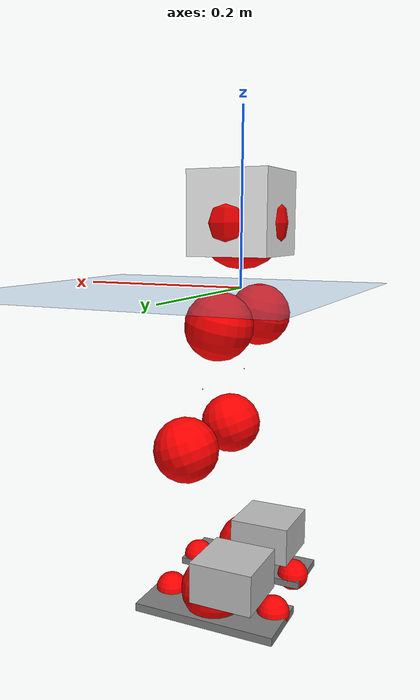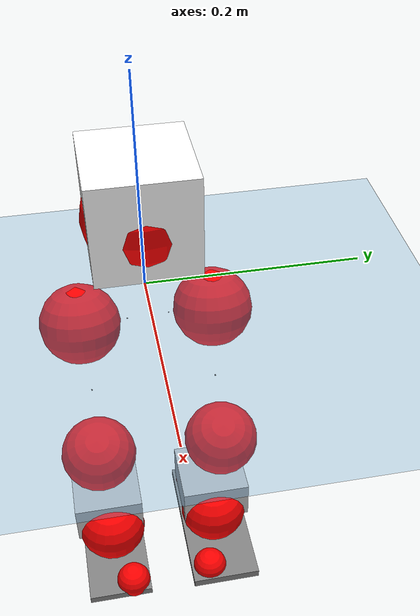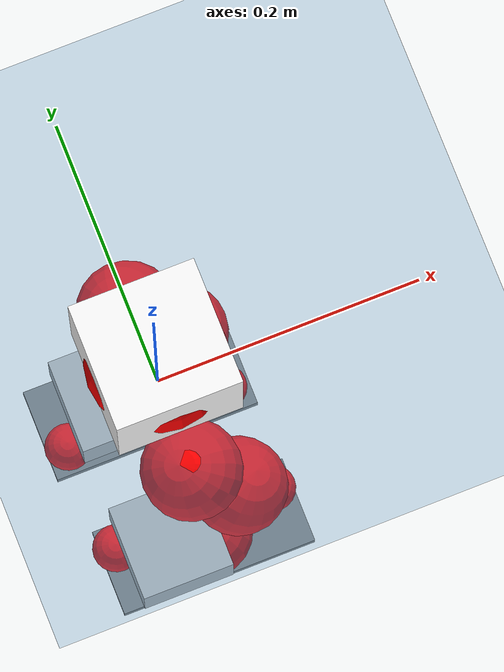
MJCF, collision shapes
<mujoco model="pi_12dof_release_v1">
  <compiler angle="radian" assetdir="assets" balanceinertia="true" inertiafromgeom="false"/>

  <option timestep="0.005" density="1.2" viscosity="2e-05"/>

  <size nkey="1"/>

  <visual>
    <quality shadowsize="8192"/>
    <map shadowclip="0.5"/>
  </visual>

  <default>
    <default class="/">
      <joint armature="0.01" damping="0.01" frictionloss="0.01"/>
      <geom contype="0" conaffinity="0" group="1" solref="-1000 -80"/>
      <site size="0.01 0.005 0.005" group="5"/>
      <general forcelimited="true" biastype="affine" gainprm="20" biasprm="0 -20 -0.5"/>
      <default class="foot">
        <geom size="0.0845 0.036 0.005" type="box" condim="6" group="4" priority="1" friction="0.9 0.2 0.2" solimp="0.015 1 0.005"/>
      </default>
      <default class="reward_collision_sphere">
        <geom group="5" rgba="1 0 0 1"/>
      </default>
    </default>
  </default>

  <asset>
    <texture type="skybox" colorspace="auto" name="//unnamed_texture_0" builtin="gradient" rgb1="0.95 0.95 0.95" rgb2="0.95 0.95 0.95" width="100" height="600"/>
    <texture type="2d" colorspace="auto" name="texplane" builtin="checker" rgb1="0.345 0.575 0.748" rgb2="0.345 0.575 0.748" markrgb="1 1 1" width="512" height="512"/>
    <material name="MatPlane" class="/" texture="texplane" texuniform="true" texrepeat="2 2" specular="0.9"/>
    <mesh name="baselink_1" class="/" file="baselink_1.STL"/>
    <mesh name="r_hip_pitch_link" class="/" file="r_hip_pitch_link.STL"/>
    <mesh name="r_hip_roll_link" class="/" file="r_hip_roll_link.STL"/>
    <mesh name="r_thigh_link" class="/" file="r_thigh_link.STL"/>
    <mesh name="r_calf_link" class="/" file="r_calf_link.STL"/>
    <mesh name="r_ankle_pitch_link" class="/" file="r_ankle_pitch_link.STL"/>
    <mesh name="r_ankle_roll_link" class="/" file="r_ankle_roll_link.STL"/>
    <mesh name="l_hip_pitch_link" class="/" file="l_hip_pitch_link.STL"/>
    <mesh name="l_hip_roll_link" class="/" file="l_hip_roll_link.STL"/>
    <mesh name="l_thigh_link" class="/" file="l_thigh_link.STL"/>
    <mesh name="l_calf_link" class="/" file="l_calf_link.STL"/>
    <mesh name="l_ankle_pitch_link" class="/" file="l_ankle_pitch_link.STL"/>
    <mesh name="l_ankle_roll_link" class="/" file="l_ankle_roll_link.STL"/>
  </asset>

  <worldbody>
    <geom name="floor" class="/" size="100 100 0.125" type="plane" group="0" material="MatPlane"/>
    <light name="toplight_shadow" class="/" pos="0 0 5" dir="0.0990148 0.0990148 -0.990148" type="directional" ambient="0.04 0.04 0.04" diffuse="0.55 0.55 0.55" specular="0.12 0.12 0.12"/>
    <light name="toplight_fill" class="/" pos="0 0 5" dir="0.0990148 0.0990148 -0.990148" type="directional" castshadow="false" ambient="0.04 0.04 0.04" diffuse="0.3 0.3 0.3" specular="0.08 0.08 0.08"/>
    <body name="trunk" pos="-8.0633e-05 -7.89557e-05 -0.00158823" quat="1 -6.02939e-05 0.000215079 3.04121e-05">
      <inertial pos="0.00251663 0.00225314 0.0447809" quat="0.695525 0.00962955 0.00962944 0.718373" mass="1.74848" diaginertia="0.00800416 0.00283145 0.00550548"/>
      <joint name="//unnamed_joint_0" type="free"/>
      <geom name="//unnamed_geom_1" class="/" type="mesh" density="0" rgba="1 1 1 1" mesh="baselink_1"/>
      <geom name="//unnamed_geom_2" class="/" size="0.0467799 0.0467799 0.0467799" pos="0 0 0.0847264" type="box" rgba="1 1 1 1"/>
      <geom name="//unnamed_geom_3" class="reward_collision_sphere" size="0.0514579" pos="0 0 0.0741356"/>
      <site name="imu" class="/" pos="-0.00424414 -0.00239273 -0.00350681" size="0.00935598"/>
      <camera name="track" class="/" pos="0 -1.58545 0" quat="0.707107 0.707107 0 0" mode="trackcom"/>
      <camera name="ego_camera" class="/" pos="0.0716244 0 0.190634" quat="-0.5 -0.5 0.5 0.5"/>
      <body name="r_hip_pitch_link" pos="0.000519207 -0.0187084 -0.0359203" quat="0.992153 -0.000284866 -0.125031 -0.000131951">
        <inertial pos="-0.00135092 -0.0442309 5.57528e-05" quat="-0.0208535 0.70544 -0.0274302 0.707932" mass="0.311027" diaginertia="8.74646e-05 3.09573e-05 0.000113"/>
        <joint name="r_hip_pitch_joint" class="/" pos="0 0 0" axis="0.0130455 -0.999904 0.0046047" stiffness="0.00532369" range="-1.74502 1.2221" armature="0.00907447" damping="0.00786965" frictionloss="0.00849315"/>
        <geom name="//unnamed_geom_4" class="/" type="mesh" density="0" rgba="0.75294 0.75294 0.75294 1" mesh="r_hip_pitch_link"/>
        <geom name="//unnamed_geom_5" class="/" size="0.000467799 0.000467799 0.000467799" type="box" rgba="0.75294 0.75294 0.75294 1"/>
        <body name="r_hip_roll_link" pos="0.000671253 -0.0437524 0.000431826" quat="1 -4.13607e-05 -6.98895e-06 1.87191e-05">
          <inertial pos="-0.00108213 -0.000694502 -0.0659" quat="0.704575 -0.0785799 -0.0845142 0.700183" mass="0.304173" diaginertia="0.000265643 8.64719e-05 0.000160252"/>
          <joint name="r_hip_roll_joint" class="/" pos="0 0 0" axis="-0.999953 0.00904974 0.00351909" range="-0.117731 0.493532" armature="0.00961259" damping="0.00912285" frictionloss="0.00964371"/>
          <geom name="//unnamed_geom_6" class="/" type="mesh" density="0" rgba="0.75294 0.75294 0.75294 1" mesh="r_hip_roll_link"/>
          <geom name="//unnamed_geom_7" class="/" size="0.000467799 0.000467799 0.000467799" type="box" rgba="0.75294 0.75294 0.75294 1"/>
          <geom name="//unnamed_geom_8" class="reward_collision_sphere" size="0.0374239"/>
          <body name="r_thigh_link" pos="0.000324446 0.00230556 -0.0711424" quat="0.999999 0.000673943 0.000419038 -0.00100421">
            <inertial pos="0.000403954 0.000658023 -0.0507771" quat="0.737624 0.675212 -5.53533e-05 -0.000184448" mass="0.0910855" diaginertia="9.93475e-05 2.89338e-05 7.58822e-05"/>
            <joint name="r_thigh_joint" class="/" pos="0 0 0" axis="0.000383043 -0.000381074 -1" range="-0.297697 0.560932" armature="0.0104046" damping="0.00283929" frictionloss="0.0093532"/>
            <geom name="//unnamed_geom_9" class="/" type="mesh" density="0" rgba="0.75294 0.75294 0.75294 1" mesh="r_thigh_link"/>
            <geom name="//unnamed_geom_10" class="/" size="0.000467799 0.000467799 0.000467799" type="box" rgba="0.75294 0.75294 0.75294 1"/>
            <body name="r_calf_link" pos="-0.000235739 -0.00175101 -0.0747036" quat="0.947882 -0.000671086 0.318621 0.000526199">
              <inertial pos="-0.000928144 -0.00177958 -0.0730429" quat="0.999988 -0.00192842 0.00126752 0.0043647" mass="0.6373" diaginertia="0.00269336 0.00105975 0.0002324"/>
              <joint name="r_calf_joint" class="/" pos="0 0 0" axis="0.00859177 -0.999902 0.0110125" stiffness="0.00751489" range="-1.6439 0.651217" armature="0.00934166" damping="0.00734799" frictionloss="0.00984616"/>
              <geom name="//unnamed_geom_11" class="/" type="mesh" density="0" rgba="0.75294 0.75294 0.75294 1" mesh="r_calf_link"/>
              <geom name="//unnamed_geom_12" class="/" size="0.000467799 0.000467799 0.000467799" type="box" rgba="0.75294 0.75294 0.75294 1"/>
              <geom name="//unnamed_geom_13" class="reward_collision_sphere" size="0.0374239"/>
              <body name="r_ankle_pitch_link" pos="0.00333903 0.00148955 -0.148093" quat="0.980161 3.88704e-05 -0.198201 0.000162975">
                <inertial pos="0.00429709 0.00341298 -0.000161131" quat="0.00368624 0.707548 -0.00229095 0.706652" mass="0.148679" diaginertia="0.000244321 7.20492e-05 0.000163178"/>
                <joint name="r_ankle_pitch_joint" class="/" pos="0 0 0" axis="0.000496036 -0.999997 -0.00242405" range="-1.32113 0.496618" armature="0.00942802" damping="0.0226448" frictionloss="0.0104423"/>
                <geom name="//unnamed_geom_14" class="/" type="mesh" density="0" rgba="0.75294 0.75294 0.75294 1" mesh="r_ankle_pitch_link"/>
                <geom name="//unnamed_geom_15" class="/" size="0.0364883 0.0374239 0.02339" type="box" rgba="0.75294 0.75294 0.75294 1"/>
                <body name="r_ankle_roll_link" pos="0.0755311 0.0015873 0.000857026" quat="1 0.000289991 -6.5278e-05 0.000163342">
                  <inertial pos="-0.0223525 0.0010594 -0.0126771" quat="0.558546 0.43467 0.43545 0.556302" mass="0.4094" diaginertia="0.000904327 0.000320267 0.000374571"/>
                  <joint name="r_ankle_roll_joint" class="/" pos="0 0 0" axis="-0.999997 -0.00228831 8.72726e-05" range="-0.152367 0.163085" armature="0.00937473" damping="0.00798146" frictionloss="0.0106046"/>
                  <geom name="//unnamed_geom_16" class="/" type="mesh" density="0" rgba="0.75294 0.75294 0.75294 1" mesh="r_ankle_roll_link"/>
                  <geom name="//unnamed_geom_17" class="/" type="mesh" rgba="0.75294 0.75294 0.75294 1" mesh="r_ankle_roll_link"/>
                  <geom name="right_foot" class="foot" size="0.0788035 0.0343699 0.00416463" pos="-0.0487046 0 -0.0465995"/>
                  <geom name="//unnamed_geom_19" class="reward_collision_sphere" size="0.0374239" pos="-0.0477496 0 -0.0211816"/>
                  <geom name="//unnamed_geom_20" class="reward_collision_sphere" size="0.018712" pos="0.0143249 0.0158545 -0.0423632"/>
                  <geom name="//unnamed_geom_21" class="reward_collision_sphere" size="0.018712" pos="-0.114599 0.0158545 -0.0423632"/>
                  <site name="right_foot" class="foot" pos="-0.0487046 0 -0.0465995" size="0.00935598"/>
                </body>
              </body>
            </body>
          </body>
        </body>
      </body>
      <body name="l_hip_pitch_link" pos="0.000442311 0.0200545 -0.0349188" quat="0.992217 0.000131147 -0.124518 -0.000346643">
        <inertial pos="0.000877061 0.0402179 -0.00118718" quat="-0.0469714 0.699057 0.0253729 0.71307" mass="0.308302" diaginertia="0.000100717 3.33645e-05 0.000134484"/>
        <joint name="l_hip_pitch_joint" class="/" pos="0 0 0" axis="0.00043123 1 0.000709508" stiffness="3.9122e-05" range="-1.20588 1.7009" armature="0.00978363" damping="0.0118529" frictionloss="0.00829857"/>
        <geom name="//unnamed_geom_22" class="/" type="mesh" density="0" rgba="0.75294 0.75294 0.75294 1" mesh="l_hip_pitch_link"/>
        <geom name="//unnamed_geom_23" class="/" size="0.000467799 0.000467799 0.000467799" type="box" rgba="0.75294 0.75294 0.75294 1"/>
        <body name="l_hip_roll_link" pos="-0.000369981 0.0420101 6.09068e-05" quat="1 6.35485e-05 -1.14429e-05 -4.78235e-05">
          <inertial pos="-0.000478584 -0.00152826 -0.0642617" quat="0.697953 -0.0729204 -0.078525 0.70808" mass="0.319791" diaginertia="0.000275894 8.91548e-05 0.000176953"/>
          <joint name="l_hip_roll_joint" class="/" pos="0 0 0" axis="-0.999993 0.00366428 0.0002509" range="-0.447415 0.065083" armature="0.00898449" damping="0.00305455" frictionloss="0.0094238"/>
          <geom name="//unnamed_geom_24" class="/" type="mesh" density="0" rgba="0.75294 0.75294 0.75294 1" mesh="l_hip_roll_link"/>
          <geom name="//unnamed_geom_25" class="/" size="0.000467799 0.000467799 0.000467799" type="box" rgba="0.75294 0.75294 0.75294 1"/>
          <geom name="//unnamed_geom_26" class="reward_collision_sphere" size="0.0374239"/>
          <body name="l_thigh_link" pos="0.00142695 -0.00117392 -0.0735611" quat="0.999999 -5.57405e-05 -0.00113696 0.000250274">
            <inertial pos="0.00246732 -0.000575232 -0.0519776" quat="0.675454 0.737402 -7.37302e-07 -3.50791e-05" mass="0.0923492" diaginertia="0.00010374 3.15755e-05 8.22622e-05"/>
            <joint name="l_thigh_joint" class="/" pos="0 0 0" axis="0.000624054 -0.00567091 -0.999984" range="-0.622245 0.25185" armature="0.00949824" damping="0.0155198" frictionloss="0.00860479"/>
            <geom name="//unnamed_geom_27" class="/" type="mesh" density="0" rgba="0.75294 0.75294 0.75294 1" mesh="l_thigh_link"/>
            <geom name="//unnamed_geom_28" class="/" size="0.000467799 0.000467799 0.000467799" type="box" rgba="0.75294 0.75294 0.75294 1"/>
            <body name="l_calf_link" pos="0.000773237 0.00200376 -0.0743267" quat="0.947393 0.000725085 0.320072 -0.00058368">
              <inertial pos="-0.000303172 0.00237506 -0.0744657" quat="0.999903 0.0128871 0.00429966 -0.00312519" mass="0.664973" diaginertia="0.00278857 0.00107755 0.000228609"/>
              <joint name="l_calf_joint" class="/" pos="0 0 0" axis="0.000315492 0.999995 0.00320947" range="-0.67018 1.65246" armature="0.00933797" damping="0.00233134" frictionloss="0.00883801"/>
              <geom name="//unnamed_geom_29" class="/" type="mesh" density="0" rgba="0.75294 0.75294 0.75294 1" mesh="l_calf_link"/>
              <geom name="//unnamed_geom_30" class="/" size="0.000467799 0.000467799 0.000467799" type="box" rgba="0.75294 0.75294 0.75294 1"/>
              <geom name="//unnamed_geom_31" class="reward_collision_sphere" size="0.0374239"/>
              <body name="l_ankle_pitch_link" pos="0.000717147 -0.000419841 -0.150744" quat="0.980069 -0.00010043 -0.198657 0.000112672">
                <inertial pos="0.00486595 0.00189772 0.000357274" quat="0.00400186 0.70854 -0.0055299 0.705638" mass="0.139365" diaginertia="0.000234731 6.69186e-05 0.000153998"/>
                <joint name="l_ankle_pitch_joint" class="/" pos="0 0 0" axis="0.013276 0.999907 0.00312691" range="-0.509969 1.30163" armature="0.00942422" damping="0" frictionloss="0.00983723"/>
                <geom name="//unnamed_geom_32" class="/" type="mesh" density="0" rgba="0.75294 0.75294 0.75294 1" mesh="l_ankle_pitch_link"/>
                <geom name="//unnamed_geom_33" class="/" size="0.0364883 0.0374239 0.02339" type="box" rgba="0.75294 0.75294 0.75294 1"/>
                <body name="l_ankle_roll_link" pos="0.0717761 -0.00168337 -0.000333832" quat="1 0.000724103 -2.14649e-05 0.000580367">
                  <inertial pos="-0.0240055 -0.00104973 -0.0153066" quat="0.550353 0.430472 0.443123 0.561647" mass="0.410436" diaginertia="0.000887887 0.000326266 0.000389103"/>
                  <joint name="l_ankle_roll_joint" class="/" pos="0 0 0" axis="-0.99991 -0.00640688 -0.0117542" range="-0.149136 0.0999418" armature="0.00941876" damping="0.00681188" frictionloss="0.00811524"/>
                  <geom name="//unnamed_geom_34" class="/" type="mesh" density="0" rgba="0.75294 0.75294 0.75294 1" mesh="l_ankle_roll_link"/>
                  <geom name="//unnamed_geom_35" class="/" type="mesh" rgba="0.75294 0.75294 0.75294 1" mesh="l_ankle_roll_link"/>
                  <geom name="left_foot" class="foot" size="0.0831989 0.0370739 0.0046837" pos="-0.0487046 0 -0.0465995"/>
                  <geom name="//unnamed_geom_37" class="reward_collision_sphere" size="0.0374239" pos="-0.0477496 0 -0.0211816"/>
                  <geom name="//unnamed_geom_38" class="reward_collision_sphere" size="0.018712" pos="0.0143249 -0.0158545 -0.0423632"/>
                  <geom name="//unnamed_geom_39" class="reward_collision_sphere" size="0.018712" pos="-0.114599 -0.0158545 -0.0423632"/>
                  <site name="left_foot" class="foot" pos="-0.0487046 0 -0.0465995" size="0.00935598"/>
                </body>
              </body>
            </body>
          </body>
        </body>
      </body>
    </body>
  </worldbody>

  <contact>
    <pair class="/" geom1="floor" geom2="right_foot" name="//unnamed_contact_1"/>
    <pair class="/" geom1="floor" geom2="left_foot" name="//unnamed_contact_0"/>
  </contact>

  <actuator>
    <general name="r_hip_pitch_joint" class="/" joint="r_hip_pitch_joint" forcerange="-18.5265 18.5265" gainprm="19.028" biasprm="0 -19.028 -0.455429"/>
    <general name="r_hip_roll_joint" class="/" joint="r_hip_roll_joint" forcerange="-19.8214 19.8214" gainprm="19.028" biasprm="0 -19.028 -0.455429"/>
    <general name="r_thigh_joint" class="/" joint="r_thigh_joint" forcerange="-19.0266 19.0266" gainprm="19.028" biasprm="0 -19.028 -0.455429"/>
    <general name="r_calf_joint" class="/" joint="r_calf_joint" forcerange="-18.9597 18.9597" gainprm="19.028" biasprm="0 -19.028 -0.455429"/>
    <general name="r_ankle_pitch_joint" class="/" joint="r_ankle_pitch_joint" forcerange="-20.4364 20.4364" gainprm="19.028" biasprm="0 -19.028 -0.455429"/>
    <general name="r_ankle_roll_joint" class="/" joint="r_ankle_roll_joint" forcerange="-21.5149 21.5149" gainprm="19.028" biasprm="0 -19.028 -0.455429"/>
    <general name="l_hip_pitch_joint" class="/" joint="l_hip_pitch_joint" forcerange="-19.3154 19.3154" gainprm="19.028" biasprm="0 -19.028 -0.455429"/>
    <general name="l_hip_roll_joint" class="/" joint="l_hip_roll_joint" forcerange="-17.6988 17.6988" gainprm="19.028" biasprm="0 -19.028 -0.455429"/>
    <general name="l_thigh_joint" class="/" joint="l_thigh_joint" forcerange="-18.8633 18.8633" gainprm="19.028" biasprm="0 -19.028 -0.455429"/>
    <general name="l_calf_joint" class="/" joint="l_calf_joint" forcerange="-20.3913 20.3913" gainprm="19.028" biasprm="0 -19.028 -0.455429"/>
    <general name="l_ankle_pitch_joint" class="/" joint="l_ankle_pitch_joint" forcerange="-18.9837 18.9837" gainprm="19.028" biasprm="0 -19.028 -0.455429"/>
    <general name="l_ankle_roll_joint" class="/" joint="l_ankle_roll_joint" forcerange="-19.6907 19.6907" gainprm="19.028" biasprm="0 -19.028 -0.455429"/>
  </actuator>

  <sensor>
    <gyro site="imu" name="imu_angular_velocity"/>
    <velocimeter site="imu" name="imu_linear_velocity"/>
    <framelinvel objtype="site" objname="left_foot" name="left_foot_global_linear_velocity"/>
    <framelinvel objtype="site" objname="right_foot" name="right_foot_global_linear_velocity"/>
  </sensor>

  <keyframe>
    <key name="home" qpos="0 0 0.291 1 0 0 0 0.4 0 0 -0.8 0.4 0 -0.4 0 0 0.8 -0.4 0"/>
  </keyframe>
</mujoco>
